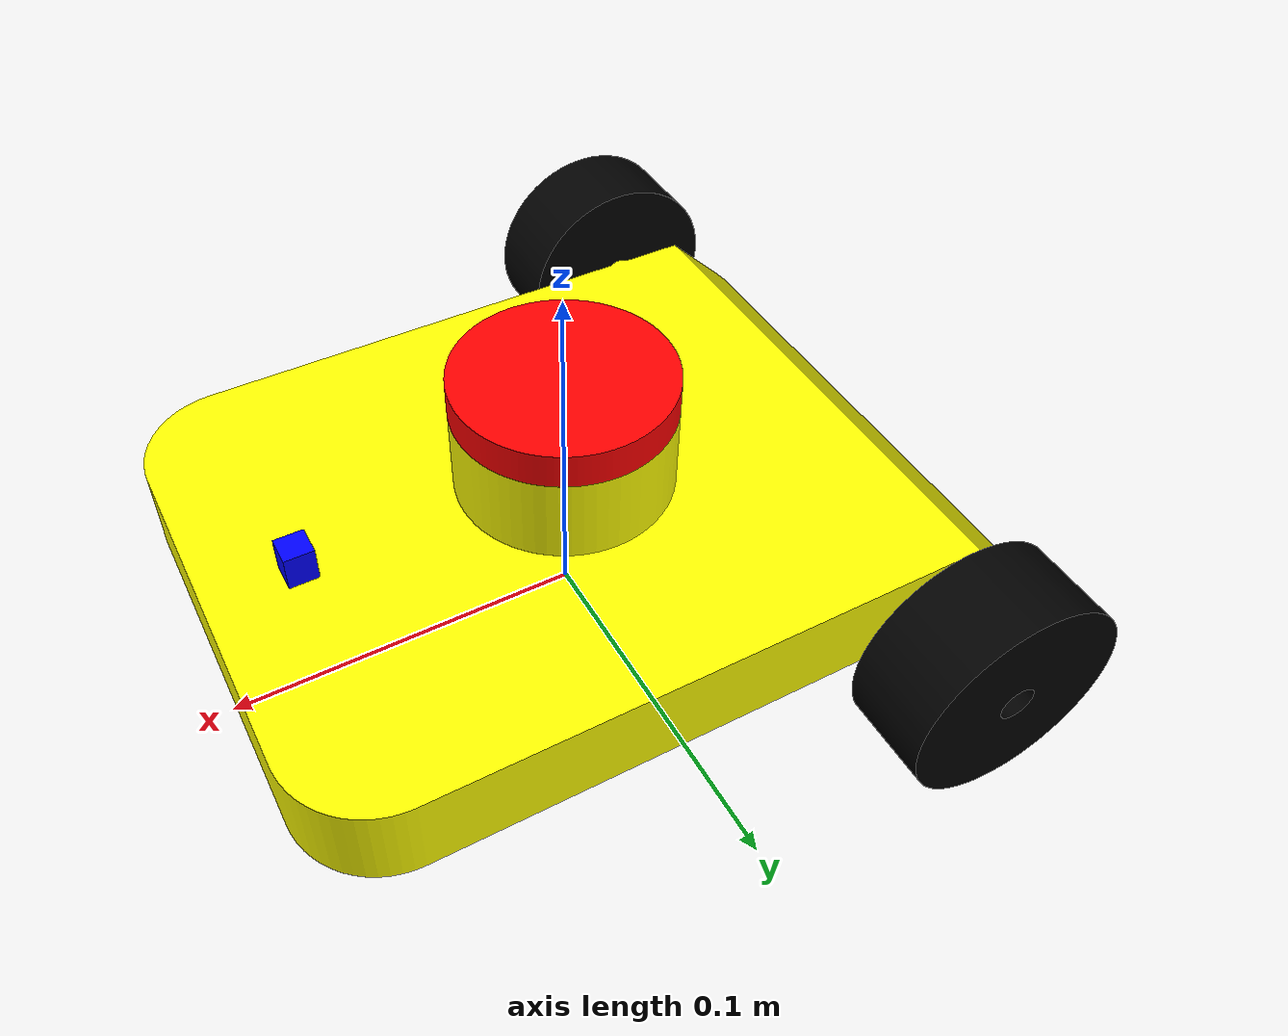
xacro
<?xml version="1.0" ?>
<robot name="diff_drive_robot" xmlns:xacro="http://www.ros.org/wiki/xacro">

<xacro:include filename="$(find diff_drive_robot_description)/urdf/materials.xacro" />
<xacro:include filename="$(find diff_drive_robot_description)/urdf/diff_drive_robot.trans" />
<xacro:include filename="$(find diff_drive_robot_description)/urdf/diff_drive_robot.gazebo" />
<link name="base_link">
  <inertial>
    <origin xyz="0.002628369932205188 -1.1577803157919556e-17 0.03202679041651883" rpy="0 0 0"/>
    <mass value="0.8326833430570597"/>
    <inertia ixx="0.001511" iyy="0.002413" izz="0.003751" ixy="-0.0" iyz="0.0" ixz="-1.3e-05"/>
  </inertial>
  <visual>
    <origin xyz="0 0 0" rpy="0 0 0"/>
    <geometry>
      <mesh filename="package://diff_drive_robot_description/meshes/base_link.stl" scale="0.001 0.001 0.001"/>
    </geometry>
    <material name="yellow"/>
  </visual>
  <collision>
    <origin xyz="0 0 0" rpy="0 0 0"/>
    <geometry>
      <mesh filename="package://diff_drive_robot_description/meshes/base_link.stl" scale="0.001 0.001 0.001"/>
    </geometry>
  </collision>
</link>

<link name="right_wheel">
  <inertial>
    <origin xyz="-1.4932499681208355e-14 -0.01249999999999997 -3.469446951953614e-18" rpy="0 0 0"/>
    <mass value="0.06391177554646725"/>
    <inertia ixx="1.8e-05" iyy="3e-05" izz="1.8e-05" ixy="-0.0" iyz="0.0" ixz="0.0"/>
  </inertial>
  <visual>
    <origin xyz="0.065 0.085 -0.03" rpy="0 0 0"/>
    <geometry>
      <mesh filename="package://diff_drive_robot_description/meshes/right_wheel.stl" scale="0.001 0.001 0.001"/>
    </geometry>
    <material name="black"/>
  </visual>
  <collision>
    <origin xyz="0.065 0.085 -0.03" rpy="0 0 0"/>
    <geometry>
      <mesh filename="package://diff_drive_robot_description/meshes/right_wheel.stl" scale="0.001 0.001 0.001"/>
    </geometry>
  </collision>
</link>

<link name="left_wheel">
  <inertial>
    <origin xyz="-1.4932499681208355e-14 0.012499999999999997 -3.469446951953614e-18" rpy="0 0 0"/>
    <mass value="0.06391177554646725"/>
    <inertia ixx="1.8e-05" iyy="3e-05" izz="1.8e-05" ixy="-0.0" iyz="0.0" ixz="0.0"/>
  </inertial>
  <visual>
    <origin xyz="0.065 -0.085 -0.03" rpy="0 0 0"/>
    <geometry>
      <mesh filename="package://diff_drive_robot_description/meshes/left_wheel.stl" scale="0.001 0.001 0.001"/>
    </geometry>
    <material name="black"/>
  </visual>
  <collision>
    <origin xyz="0.065 -0.085 -0.03" rpy="0 0 0"/>
    <geometry>
      <mesh filename="package://diff_drive_robot_description/meshes/left_wheel.stl" scale="0.001 0.001 0.001"/>
    </geometry>
  </collision>
</link>

<link name="lidar">
  <inertial>
    <origin xyz="5.026061718855929e-18 0.0 0.0049999999999999906" rpy="0 0 0"/>
    <mass value="0.2219535209761188"/>
    <inertia ixx="5.2e-05" iyy="5.2e-05" izz="0.0001" ixy="0.0" iyz="-0.0" ixz="-0.0"/>
  </inertial>
  <visual>
    <origin xyz="-0.0 -0.0 -0.0675" rpy="0 0 0"/>
    <geometry>
      <mesh filename="package://diff_drive_robot_description/meshes/lidar.stl" scale="0.001 0.001 0.001"/>
    </geometry>
    <material name="red"/>
  </visual>
  <collision>
    <origin xyz="-0.0 -0.0 -0.0675" rpy="0 0 0"/>
    <geometry>
      <mesh filename="package://diff_drive_robot_description/meshes/lidar.stl" scale="0.001 0.001 0.001"/>
    </geometry>
  </collision>
</link>

<link name="caster">
  <inertial>
    <origin xyz="-0.03 0.0 -0.006750000000000004" rpy="0 0 0"/>
    <mass value="0.06936047530503713"/>
    <inertia ixx="5e-06" iyy="5e-06" izz="7e-06" ixy="-0.0" iyz="-0.0" ixz="0.0"/>
  </inertial>
  <visual>
    <origin xyz="-0.1 -0.0 -0.0175" rpy="0 0 0"/>
    <geometry>
      <mesh filename="package://diff_drive_robot_description/meshes/caster.stl" scale="0.001 0.001 0.001"/>
    </geometry>
    <material name="grey"/>
  </visual>
  <collision>
    <origin xyz="-0.1 -0.0 -0.0175" rpy="0 0 0"/>
    <geometry>
      <mesh filename="package://diff_drive_robot_description/meshes/caster.stl" scale="0.001 0.001 0.001"/>
    </geometry>
  </collision>
</link>

<link name="camera">
  <inertial>
    <origin xyz="0.0 -0.05 0.0049999999999999975" rpy="0 0 0"/>
    <mass value="0.0051124244897195505"/>
    <inertia ixx="0.0" iyy="0.0" izz="0.0" ixy="0.0" iyz="-0.0" ixz="-0.0"/>
  </inertial>
  <visual>
    <origin xyz="-0.075 -0.05 -0.0425" rpy="0 0 0"/>
    <geometry>
      <mesh filename="package://diff_drive_robot_description/meshes/camera.stl" scale="0.001 0.001 0.001"/>
    </geometry>
    <material name="blue"/>
  </visual>
  <collision>
    <origin xyz="-0.075 -0.05 -0.0425" rpy="0 0 0"/>
    <geometry>
      <mesh filename="package://diff_drive_robot_description/meshes/camera.stl" scale="0.001 0.001 0.001"/>
    </geometry>
  </collision>
</link>

<joint name="right_wheel_joint" type="continuous">
  <origin xyz="-0.065 -0.085 0.03" rpy="0 0 0"/>
  <parent link="base_link"/>
  <child link="right_wheel"/>
  <axis xyz="0.0 1.0 0.0"/>
</joint>

<joint name="left_wheel_joint" type="continuous">
  <origin xyz="-0.065 0.085 0.03" rpy="0 0 0"/>
  <parent link="base_link"/>
  <child link="left_wheel"/>
  <axis xyz="0.0 1.0 0.0"/>
</joint>

<joint name="lidar_joint" type="fixed">
  <origin xyz="0.0 0.0 0.0675" rpy="0 0 0"/>
  <parent link="base_link"/>
  <child link="lidar"/>
</joint>

<joint name="caster_joint" type="fixed">
  <origin xyz="0.1 0.0 0.0175" rpy="0 0 0"/>
  <parent link="base_link"/>
  <child link="caster"/>
</joint>

<joint name="camera_joint" type="fixed">
  <origin xyz="0.075 0.05 0.0425" rpy="0 0 0"/>
  <parent link="base_link"/>
  <child link="camera"/>
</joint>

</robot>

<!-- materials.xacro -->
<robot name="diff_drive_robot" xmlns:xacro="http://www.ros.org/wiki/xacro" >

  <material name="silver">
    <color rgba="0.700 0.700 0.700 1.000"/>
  </material>

  <material name="yellow">
    <color rgba="1.000 1.000 0.000 1.000"/>
  </material>

  <material name="grey">
    <color rgba="0.500 0.500 0.500 1.000"/>
  </material>

  <material name="black">
    <color rgba="0.000 0.000 0.000 1.000"/>
  </material>

  <material name="red">
    <color rgba="1.000 0.000 0.000 1.000"/>
  </material>

  <material name="blue">
    <color rgba="0.000 0.000 1.000 1.000"/>
  </material>

</robot>

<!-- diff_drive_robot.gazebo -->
<robot name="diff_drive_robot" xmlns:xacro="http://www.ros.org/wiki/xacro" >

<xacro:property name="body_color" value="Gazebo/Yellow" />
<xacro:property name="wheel_color" value="Gazebo/Black" />
<xacro:property name="caster_color" value="Gazebo/Grey" />
<xacro:property name="lidar_color" value="Gazebo/Red" />
<xacro:property name="cam_color" value="Gazebo/Blue" />

<gazebo>
  <plugin name="control" filename="libgazebo_ros_control.so"/>
</gazebo>
<gazebo reference="base_link">
  <material>${body_color}</material>
  <mu1>0.2</mu1>
  <mu2>0.2</mu2>
  <selfCollide>true</selfCollide>
  <gravity>true</gravity>
</gazebo>

<gazebo reference="right_wheel">
  <material>${wheel_color}</material>
  <mu1>0.2</mu1>
  <mu2>0.2</mu2>
  <selfCollide>true</selfCollide>
</gazebo>

<gazebo reference="left_wheel">
  <material>${wheel_color}</material>
  <mu1>0.2</mu1>
  <mu2>0.2</mu2>
  <selfCollide>true</selfCollide>
</gazebo>

<gazebo reference="lidar">
  <material>${lidar_color}</material>
  <mu1>0.2</mu1>
  <mu2>0.2</mu2>
  <selfCollide>true</selfCollide>
</gazebo>

<gazebo reference="caster">
  <material>${caster_color}</material>
  <mu1>0.0</mu1>
  <mu2>0.0</mu2>
  <selfCollide>true</selfCollide>
</gazebo>

<gazebo reference="camera">
  <material>${cam_color}</material>
  <mu1>0.2</mu1>
  <mu2>0.2</mu2>
  <selfCollide>true</selfCollide>
</gazebo>

<gazebo>
  <plugin name="differential_drive_controller" filename="libgazebo_ros_diff_drive.so">

    <!-- Plugin update rate in Hz -->
    <updateRate>100.0</updateRate>

    <!-- Name of left joint, defaults to `left_joint` -->
    <leftJoint>left_wheel_joint</leftJoint>

    <!-- Name of right joint, defaults to `right_joint` -->
    <rightJoint>right_wheel_joint</rightJoint>

    <!-- The distance from the center of one wheel to the other, in meters, defaults to 0.34 m -->
    <wheelSeparation>0.19</wheelSeparation>

    <!-- Diameter of the wheels, in meters, defaults to 0.15 m -->
    <wheelDiameter>0.06</wheelDiameter>

    <!-- Wheel acceleration, in rad/s^2, defaults to 0.0 rad/s^2 -->
    <wheelAcceleration>2.0</wheelAcceleration>

    <!-- Maximum torque which the wheels can produce, in Nm, defaults to 5 Nm -->
    <wheelTorque>50</wheelTorque>

    <!-- Topic to receive geometry_msgs/Twist message commands, defaults to `cmd_vel` -->
    <commandTopic>cmd_vel</commandTopic>

    <!-- Topic to publish nav_msgs/Odometry messages, defaults to `odom` -->
    <odometryTopic>odom</odometryTopic>

    <!-- Odometry frame, defaults to `odom` -->
    <odometryFrame>odom</odometryFrame>

    <!-- Robot frame to calculate odometry from, defaults to `base_footprint` -->
    <robotBaseFrame>base_link</robotBaseFrame>

    <!-- Odometry source, 0 for ENCODER, 1 for WORLD, defaults to WORLD -->
    <odometrySource>1</odometrySource>

    <!-- Set to true to publish transforms for the wheel links, defaults to false -->
    <publishWheelTF>true</publishWheelTF>

    <!-- Set to true to publish transforms for the odometry, defaults to true -->
    <publishOdom>true</publishOdom>

    <!-- Set to true to publish sensor_msgs/JointState on /joint_states for the wheel joints, defaults to false -->
    <publishWheelJointState>true</publishWheelJointState>

    <!-- Set to true to swap right and left wheels, defaults to true -->
    <legacyMode>false</legacyMode>
  </plugin>
</gazebo>

  <!-- hokuyo -->
  <gazebo reference="lidar">
    <sensor type="ray" name="head_hokuyo_sensor">
      <pose>0 0 0 0 0 0</pose>
      <visualize>false</visualize>
      <update_rate>40</update_rate>
      <ray>
        <scan>
          <horizontal>
            <samples>720</samples>
            <resolution>1</resolution>
            <min_angle>-3.14</min_angle>
            <max_angle>3.14</max_angle>
          </horizontal>
        </scan>
        <range>
          <min>0.10</min>
          <max>30.0</max>
          <resolution>0.01</resolution>
        </range>
        <noise>
          <type>gaussian</type>
          <mean>0.0</mean>
          <stddev>0.01</stddev>
        </noise>
      </ray>
      <plugin name="gazebo_ros_head_hokuyo_controller" filename="libgazebo_ros_laser.so">
        <topicName>/scan</topicName>
        <frameName>lidar</frameName>
      </plugin>
    </sensor>
  </gazebo>

  <!-- camera -->
  <gazebo reference="camera">
    <sensor type="camera" name="camera1">
      <update_rate>30.0</update_rate>
      <camera name="head">
        <horizontal_fov>1.3962634</horizontal_fov>
        <image>
          <width>800</width>
          <height>800</height>
          <format>R8G8B8</format>
        </image>
        <clip>
          <near>0.02</near>
          <far>300</far>
        </clip>
        <noise>
          <type>gaussian</type>
          <!-- Noise is sampled independently per pixel on each frame.
               That pixel's noise value is added to each of its color
               channels, which at that point lie in the range [0,1]. -->
          <mean>0.0</mean>
          <stddev>0.007</stddev>
        </noise>
      </camera>
      <plugin name="camera_controller" filename="libgazebo_ros_camera.so">
        <alwaysOn>true</alwaysOn>
        <updateRate>0.0</updateRate>
        <cameraName>camera</cameraName>
        <imageTopicName>image_raw</imageTopicName>
        <cameraInfoTopicName>camera_info</cameraInfoTopicName>
        <frameName>camera_link</frameName>
        <hackBaseline>0.07</hackBaseline>
        <distortionK1>0.0</distortionK1>
        <distortionK2>0.0</distortionK2>
        <distortionK3>0.0</distortionK3>
        <distortionT1>0.0</distortionT1>
        <distortionT2>0.0</distortionT2>
      </plugin>
    </sensor>
  </gazebo>

</robot>
